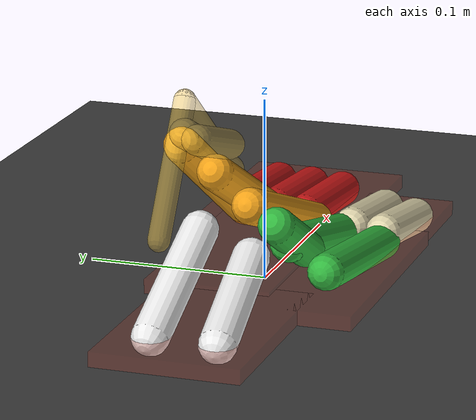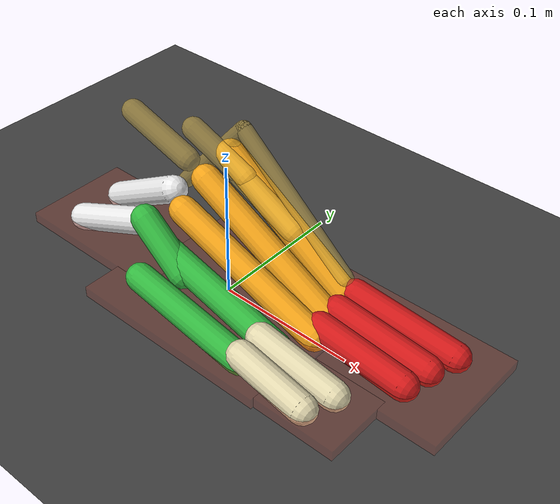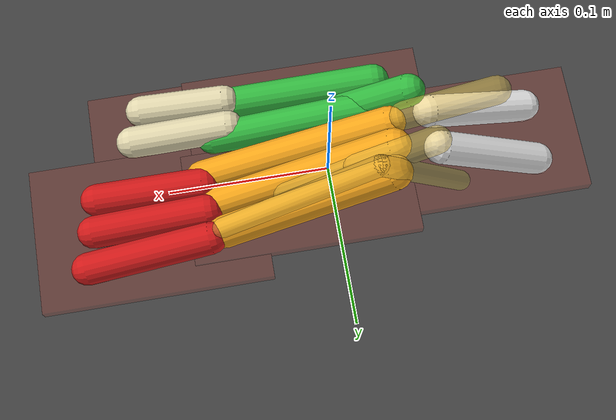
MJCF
<mujoco model="park_multi_segment_foot_sandbox">
  <compiler angle="radian" coordinate="local"/>

  <option timestep="0.001"
          integrator="implicitfast"
          solver="Newton"
          cone="elliptic"
          impratio="10"
          iterations="80"
          tolerance="1e-10"
          noslip_iterations="2">
    <flag nativeccd="enable" multiccd="enable"/>
  </option>

  <default>
    <joint damping="0.15" armature="0.0005"/>

    <geom solref="0.010 1"
          solimp="0.90 0.98 0.0015 0.5 2"
          margin="0.0005"/>

    <default class="foot_bone_contact">
      <geom type="capsule"
            size="0.010"
            condim="6"
            contype="1"
            conaffinity="2"
            friction="1.1 0.03 0.002"
            rgba="0.10 0.45 0.85 1"/>
    </default>

    <default class="foot_bone_visual">
      <geom type="capsule"
            size="0.008"
            contype="0"
            conaffinity="0"
            rgba="0.95 0.78 0.28 0.45"/>
    </default>

    <default class="touch_site">
      <site type="box"
            rgba="0.9 0.2 0.1 0.18"/>
    </default>
  </default>

  <worldbody>
    <light name="key" pos="0 -1.2 1.5" dir="0 1 -1" diffuse="0.8 0.8 0.8"/>

    <geom name="floor"
          type="plane"
          size="2.0 1.0 0.05"
          condim="6"
          contype="2"
          conaffinity="1"
          friction="1.1 0.03 0.002"
          rgba="0.25 0.25 0.25 1"/>

    <body name="medial_metatarsal" pos="0 0 0.010">
      <freejoint name="foot_free"/>
      <inertial pos="0.020 0.012 0.006" mass="0.28" diaginertia="0.0008 0.0016 0.0014"/>

      <!-- Segment 1: medial metatarsal, subordinate to ankle/root. -->
      <geom name="metatarsal_1" class="foot_bone_contact"
            fromto="-0.030 0.036 0.070  0.070 0.035 0.006"
            rgba="0.95 0.64 0.10 1"/>
      <geom name="metatarsal_2" class="foot_bone_contact"
            fromto="-0.034 0.016 0.058  0.074 0.015 0.001"
            rgba="0.95 0.64 0.10 1"/>
      <geom name="metatarsal_3" class="foot_bone_contact"
            fromto="-0.036 -0.004 0.042  0.078 -0.004 0.000"
            rgba="0.95 0.64 0.10 1"/>

      <!-- Elevated tarsal/arch bones. They are visual-only to match the paper's
           statement that these bones rarely contact the ground and mostly form
           the arch/support structure. -->
      <geom name="talus_visual" class="foot_bone_visual"
            fromto="-0.090 0.006 0.092  -0.040 0.006 0.076"/>
      <geom name="navicular_visual" class="foot_bone_visual"
            fromto="-0.054 0.026 0.084  -0.010 0.028 0.064"/>
      <geom name="cuneiform_visual" class="foot_bone_visual"
            fromto="-0.014 0.028 0.064  0.030 0.030 0.040"/>
      <geom name="medial_arch_ridge_visual" class="foot_bone_visual"
            size="0.006"
            fromto="-0.072 0.034 0.030  -0.020 0.038 0.092"/>
      <geom name="medial_arch_drop_visual" class="foot_bone_visual"
            size="0.006"
            fromto="-0.020 0.038 0.092  0.070 0.036 0.018"/>

      <site name="medial_metatarsal_touch" class="touch_site"
            pos="0.020 0.016 -0.004" size="0.070 0.035 0.004"/>

      <!-- Segment 2: heel. The paper adds a non-anatomical heel joint so the
           calcaneus-like capsule pair can meet the ground in many directions. -->
      <body name="heel" pos="-0.070 0.000 0.000">
        <joint name="heel_ball" type="ball" damping="0.35" armature="0.0006"/>
        <inertial pos="-0.030 0 0" mass="0.18" diaginertia="0.0005 0.0008 0.0008"/>

        <geom name="calcaneus_medial" class="foot_bone_contact"
              fromto="-0.058 0.018 -0.002  0.006 0.014 0.036"
              rgba="0.92 0.92 0.92 1"/>
        <geom name="calcaneus_lateral" class="foot_bone_contact"
              fromto="-0.058 -0.018 -0.002  0.006 -0.014 0.024"
              rgba="0.92 0.92 0.92 1"/>

        <site name="heel_touch" class="touch_site"
              pos="-0.028 0 -0.006" size="0.060 0.040 0.004"/>
      </body>

      <!-- Segment 3: lateral metatarsal. Joint is placed near the fourth
           metatarsal/cuboid region, matching the paper's lateral foot joint. -->
      <body name="lateral_metatarsal" pos="-0.032 -0.028 0.000">
        <joint name="lateral_metatarsal_ball" type="ball" damping="0.22" armature="0.0005"/>
        <inertial pos="0.040 -0.006 0.000" mass="0.20" diaginertia="0.0006 0.0012 0.0010"/>

        <geom name="cuboid" class="foot_bone_contact"
              fromto="-0.020 0.004 0.038  0.018 0.000 0.014"
              rgba="0.20 0.72 0.25 1"/>
        <geom name="metatarsal_4" class="foot_bone_contact"
              fromto="0.000 0.004 0.022  0.100 0.000 0.000"
              rgba="0.20 0.72 0.25 1"/>
        <geom name="metatarsal_5" class="foot_bone_contact"
              fromto="-0.004 -0.018 0.010  0.088 -0.022 -0.001"
              rgba="0.20 0.72 0.25 1"/>

        <site name="lateral_metatarsal_touch" class="touch_site"
              pos="0.040 -0.006 -0.006" size="0.075 0.035 0.004"/>

        <!-- Segment 4: lateral phalanges, toes four and five. -->
        <body name="lateral_phalanges" pos="0.090 -0.010 0.000">
          <joint name="lateral_phalanges_ball" type="ball" damping="0.18" armature="0.0004"/>
          <inertial pos="0.030 -0.004 0.000" mass="0.075" diaginertia="0.00015 0.00030 0.00025"/>

          <geom name="phalanx_4" class="foot_bone_contact"
                fromto="0.000 0.006 0.006  0.060 0.004 -0.001"
                rgba="0.88 0.84 0.68 1"/>
          <geom name="phalanx_5" class="foot_bone_contact"
                fromto="0.000 -0.012 0.004  0.052 -0.016 -0.002"
                rgba="0.88 0.84 0.68 1"/>

          <site name="lateral_phalanges_touch" class="touch_site"
                pos="0.030 -0.004 -0.006" size="0.055 0.025 0.004"/>
        </body>
      </body>

      <body name="medial_phalanges" pos="0.078 0.006 0.000">
        <joint name="medial_phalanges_ball" type="ball" damping="0.18" armature="0.0004"/>
        <inertial pos="0.036 0.014 0.000" mass="0.11" diaginertia="0.00020 0.00042 0.00035"/>

        <geom name="phalanx_1" class="foot_bone_contact"
              fromto="0.000 0.032 0.008  0.076 0.036 -0.002"
              rgba="0.82 0.10 0.10 1"/>
        <geom name="phalanx_2" class="foot_bone_contact"
              fromto="0.000 0.014 0.006  0.070 0.014 -0.001"
              rgba="0.82 0.10 0.10 1"/>
        <geom name="phalanx_3" class="foot_bone_contact"
              fromto="0.000 -0.004 0.004  0.066 -0.006 -0.001"
              rgba="0.82 0.10 0.10 1"/>

        <site name="medial_phalanges_touch" class="touch_site"
              pos="0.036 0.014 -0.006" size="0.070 0.045 0.004"/>
      </body>
    </body>
  </worldbody>

  <contact>
    <pair name="floor_calcaneus_medial" geom1="floor" geom2="calcaneus_medial"
          condim="6" friction="1.2 1.0 0.035 0.003 0.003"
          solref="0.010 1" solimp="0.90 0.98 0.0015 0.5 2"/>
    <pair name="floor_calcaneus_lateral" geom1="floor" geom2="calcaneus_lateral"
          condim="6" friction="1.2 1.0 0.035 0.003 0.003"
          solref="0.010 1" solimp="0.90 0.98 0.0015 0.5 2"/>

    <pair name="floor_metatarsal_1" geom1="floor" geom2="metatarsal_1"
          condim="6" friction="1.1 0.9 0.025 0.002 0.002"
          solref="0.012 1" solimp="0.90 0.98 0.0015 0.5 2"/>
    <pair name="floor_metatarsal_2" geom1="floor" geom2="metatarsal_2"
          condim="6" friction="1.1 0.9 0.025 0.002 0.002"
          solref="0.012 1" solimp="0.90 0.98 0.0015 0.5 2"/>
    <pair name="floor_metatarsal_3" geom1="floor" geom2="metatarsal_3"
          condim="6" friction="1.1 0.9 0.025 0.002 0.002"
          solref="0.012 1" solimp="0.90 0.98 0.0015 0.5 2"/>
    <pair name="floor_cuboid" geom1="floor" geom2="cuboid"
          condim="6" friction="1.1 0.9 0.025 0.002 0.002"
          solref="0.012 1" solimp="0.90 0.98 0.0015 0.5 2"/>
    <pair name="floor_metatarsal_4" geom1="floor" geom2="metatarsal_4"
          condim="6" friction="1.15 0.95 0.030 0.002 0.002"
          solref="0.011 1" solimp="0.90 0.98 0.0015 0.5 2"/>
    <pair name="floor_metatarsal_5" geom1="floor" geom2="metatarsal_5"
          condim="6" friction="1.15 0.95 0.030 0.002 0.002"
          solref="0.011 1" solimp="0.90 0.98 0.0015 0.5 2"/>

    <pair name="floor_phalanx_1" geom1="floor" geom2="phalanx_1"
          condim="6" friction="1.25 1.0 0.030 0.002 0.002"
          solref="0.010 1" solimp="0.92 0.99 0.0015 0.5 2"/>
    <pair name="floor_phalanx_2" geom1="floor" geom2="phalanx_2"
          condim="6" friction="1.20 1.0 0.030 0.002 0.002"
          solref="0.010 1" solimp="0.92 0.99 0.0015 0.5 2"/>
    <pair name="floor_phalanx_3" geom1="floor" geom2="phalanx_3"
          condim="6" friction="1.20 1.0 0.030 0.002 0.002"
          solref="0.010 1" solimp="0.92 0.99 0.0015 0.5 2"/>
    <pair name="floor_phalanx_4" geom1="floor" geom2="phalanx_4"
          condim="6" friction="1.15 1.0 0.025 0.002 0.002"
          solref="0.010 1" solimp="0.92 0.99 0.0015 0.5 2"/>
    <pair name="floor_phalanx_5" geom1="floor" geom2="phalanx_5"
          condim="6" friction="1.15 1.0 0.025 0.002 0.002"
          solref="0.010 1" solimp="0.92 0.99 0.0015 0.5 2"/>
  </contact>

  <sensor>
    <touch name="heel_force" site="heel_touch"/>
    <touch name="medial_metatarsal_force" site="medial_metatarsal_touch"/>
    <touch name="lateral_metatarsal_force" site="lateral_metatarsal_touch"/>
    <touch name="medial_phalanges_force" site="medial_phalanges_touch"/>
    <touch name="lateral_phalanges_force" site="lateral_phalanges_touch"/>
  </sensor>

  <keyframe>
    <!-- qpos: free root xyz + root quat, then 4 ball-joint quats:
         heel, lateral_metatarsal, lateral_phalanges, medial_phalanges. -->
    <key name="rest_pose"
         qpos="0 0 0.010 1 0 0 0  1 0 0 0  1 0 0 0  1 0 0 0  1 0 0 0"/>

    <key name="heel_strike"
         qpos="-0.020 0 0.020 0.9961947 0 -0.0871557 0  0.9961947 0 0.0871557 0  1 0 0 0  1 0 0 0  1 0 0 0"/>

    <key name="tiptoe"
             qpos="0.025 0 0.030 0.9848078 0 0.1736482 0  1 0 0 0  0.9961947 0 -0.0871557 0  0.9659258 0 -0.2588190 0  0.9659258 0 -0.2588190 0"/>

    <key name="inside_tilt"
             qpos="0 0 0.020 0.9961947 -0.0871557 0 0  0.9961947 -0.0871557 0 0  0.9848078 -0.1736482 0 0  1 0 0 0  0.9961947 -0.0871557 0 0"/>

    <key name="outside_tilt"
             qpos="0 0 0.028 0.9961947 0.0871557 0 0  0.9961947 0.0871557 0 0  0.9848078 0.1736482 0 0  0.9961947 0.0871557 0 0  1 0 0 0"/>
  </keyframe>
</mujoco>
